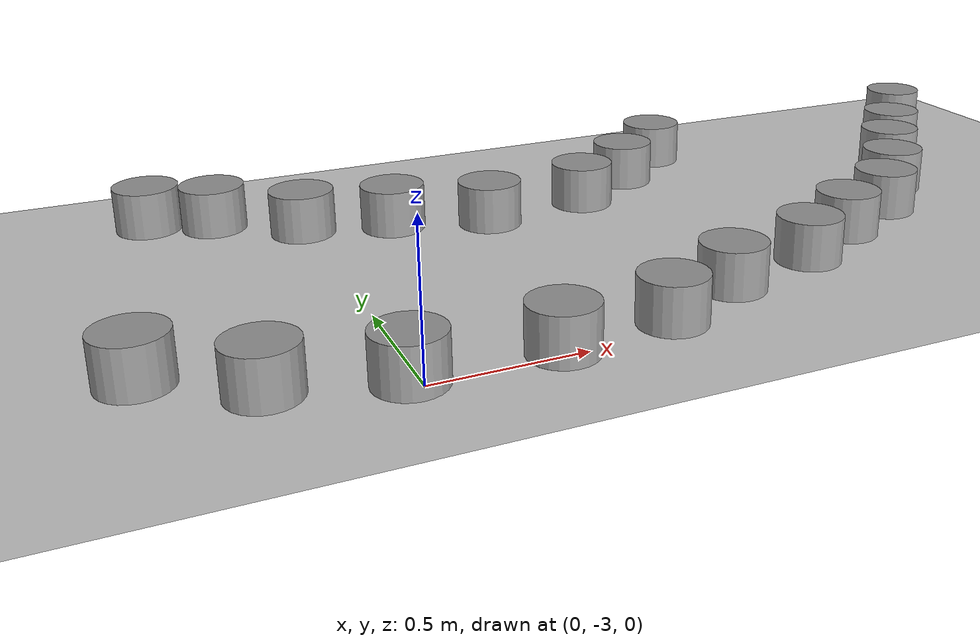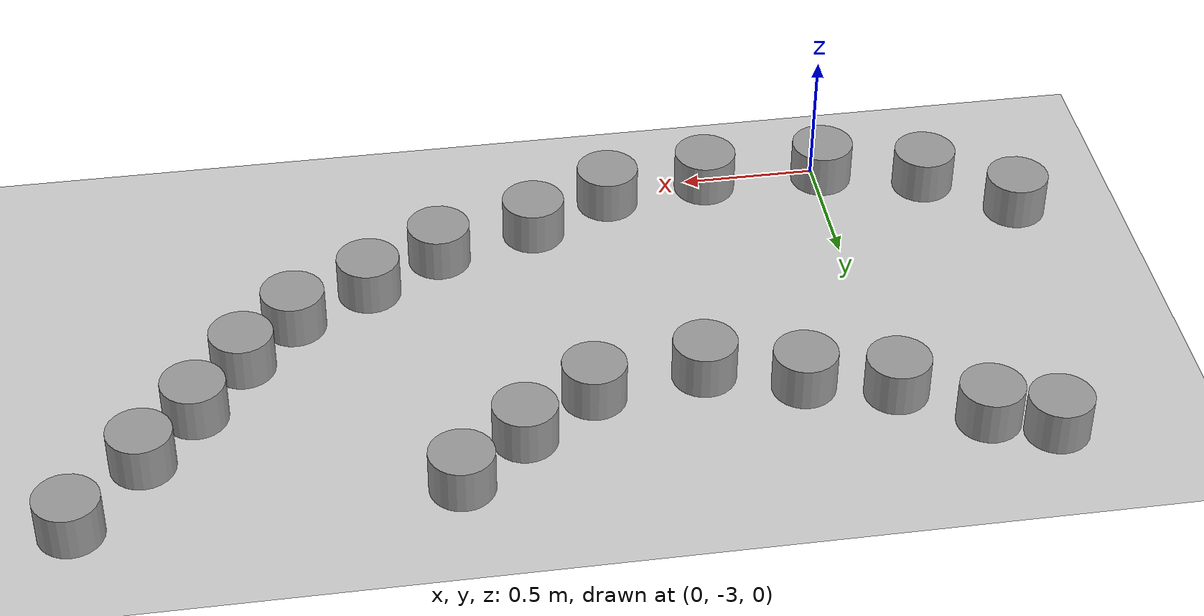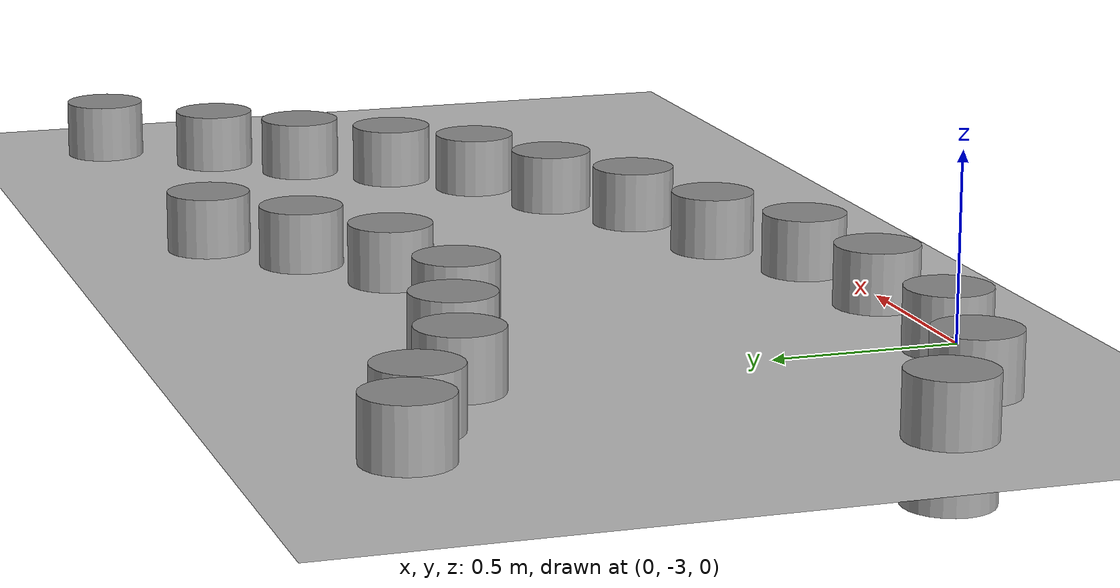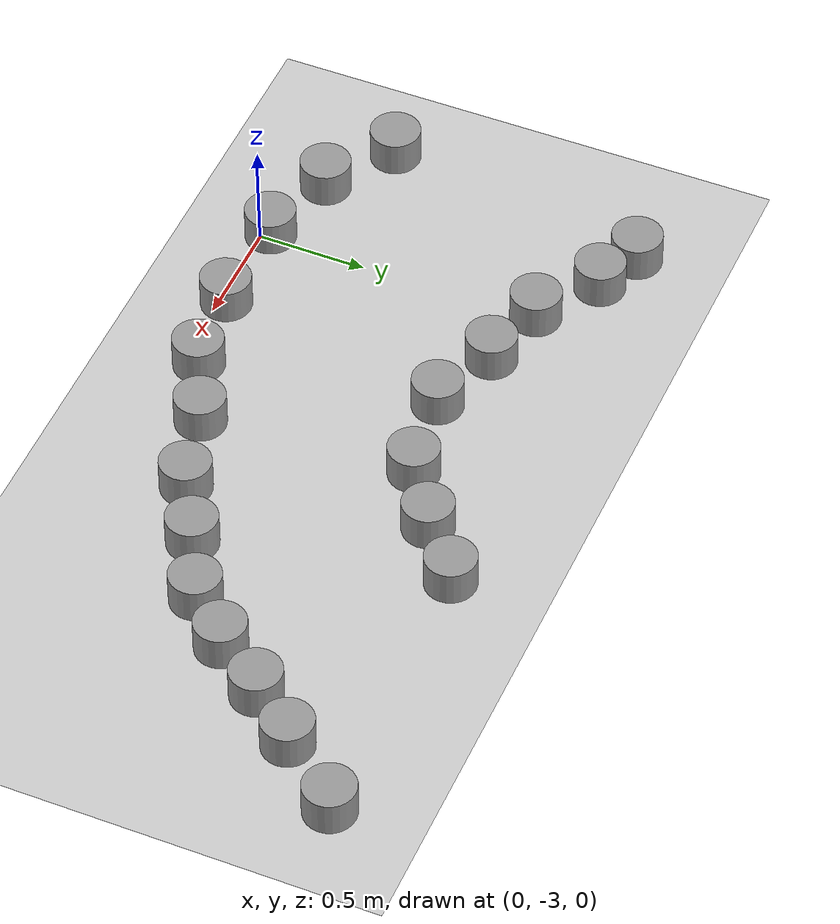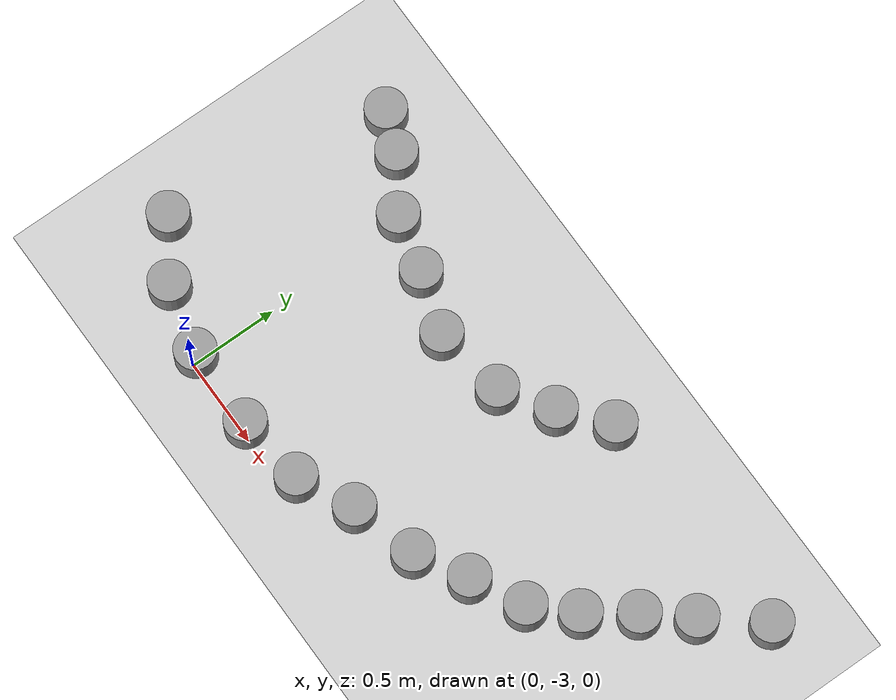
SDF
<sdf version="1.6">
 <world name="default">
  <model name="ground_plane">
   <static>1</static>
   <link name="link">
    <collision name="collision">
     <geometry><plane><normal>0 0 1</normal><size>100 100</size></plane></geometry>
     <surface>
      <contact><collide_bitmask>65535</collide_bitmask></contact>
      <friction><ode><mu>100</mu><mu2>50</mu2></ode></friction>
     </surface>
    </collision>
    <visual name="visual">
     <cast_shadows>0</cast_shadows>
     <geometry><plane><normal>0 0 1</normal><size>100 100</size></plane></geometry>
     <material>
      <script><uri>file://media/materials/scripts/gazebo.material</uri><name>Gazebo/Grey</name></script>
     </material>
    </visual>
   </link>
  </model>
  <model name="pillar_clone_34">
   <link name="link_0">
    <inertial>
     <mass>0.0172437</mass>
     <inertia>
      <ixx>0.000207925</ixx>
      <ixy>0</ixy>
      <ixz>0</ixz>
      <iyy>0.000207925</iyy>
      <iyz>0</iyz>
      <izz>0.000114861</izz>
     </inertia>
    </inertial>
    <pose>2e-06 -0 0 0 -0 0</pose>
    <visual name="visual">
     <geometry><cylinder><radius>0.115422</radius><length>0.32362</length></cylinder></geometry>
     <material>
      <lighting>1</lighting>
      <script><uri>file://media/materials/scripts/gazebo.material</uri><name>Gazebo/Grey</name></script>
      <shader type="vertex"><normal_map>__default__</normal_map></shader>
     </material>
    </visual>
    <collision name="collision">
     <geometry><cylinder><radius>0.115422</radius><length>0.32362</length></cylinder></geometry>
     <surface>
      <friction>
       <ode><mu>1</mu><mu2>1</mu2><fdir1>0 0 0</fdir1><slip1>0</slip1><slip2>0</slip2></ode>
       <torsional>
        <coefficient>1</coefficient>
        <patch_radius>0</patch_radius>
        <surface_radius>0</surface_radius>
        <use_patch_radius>1</use_patch_radius>
        <ode><slip>0</slip></ode>
       </torsional>
      </friction>
      <bounce><restitution_coefficient>0</restitution_coefficient><threshold>1e+06</threshold></bounce>
      <contact>
       <collide_without_contact>0</collide_without_contact>
       <collide_without_contact_bitmask>1</collide_without_contact_bitmask>
       <collide_bitmask>1</collide_bitmask>
       <ode>
        <soft_cfm>0</soft_cfm>
        <soft_erp>0.2</soft_erp>
        <kp>1e+13</kp>
        <kd>1</kd>
        <max_vel>0.01</max_vel>
        <min_depth>0</min_depth>
       </ode>
       <bullet>
        <split_impulse>1</split_impulse>
        <split_impulse_penetration_threshold>-0.01</split_impulse_penetration_threshold>
        <soft_cfm>0</soft_cfm>
        <soft_erp>0.2</soft_erp>
        <kp>1e+13</kp>
        <kd>1</kd>
       </bullet>
      </contact>
     </surface>
    </collision>
   </link>
   <static>1</static>
   <pose>1.12129 -2.77078 0 0 -0 0</pose>
  </model>
  <model name="pillar_clone_35">
   <link name="link_0">
    <inertial>
     <mass>0.0172437</mass>
     <inertia>
      <ixx>0.000207925</ixx>
      <ixy>0</ixy>
      <ixz>0</ixz>
      <iyy>0.000207925</iyy>
      <iyz>0</iyz>
      <izz>0.000114861</izz>
     </inertia>
    </inertial>
    <pose>2e-06 -0 0 0 -0 0</pose>
    <visual name="visual">
     <geometry><cylinder><radius>0.115422</radius><length>0.32362</length></cylinder></geometry>
     <material>
      <lighting>1</lighting>
      <script><uri>file://media/materials/scripts/gazebo.material</uri><name>Gazebo/Grey</name></script>
      <shader type="vertex"><normal_map>__default__</normal_map></shader>
     </material>
    </visual>
    <collision name="collision">
     <geometry><cylinder><radius>0.115422</radius><length>0.32362</length></cylinder></geometry>
     <surface>
      <friction>
       <ode><mu>1</mu><mu2>1</mu2><fdir1>0 0 0</fdir1><slip1>0</slip1><slip2>0</slip2></ode>
       <torsional>
        <coefficient>1</coefficient>
        <patch_radius>0</patch_radius>
        <surface_radius>0</surface_radius>
        <use_patch_radius>1</use_patch_radius>
        <ode><slip>0</slip></ode>
       </torsional>
      </friction>
      <bounce><restitution_coefficient>0</restitution_coefficient><threshold>1e+06</threshold></bounce>
      <contact>
       <collide_without_contact>0</collide_without_contact>
       <collide_without_contact_bitmask>1</collide_without_contact_bitmask>
       <collide_bitmask>1</collide_bitmask>
       <ode>
        <soft_cfm>0</soft_cfm>
        <soft_erp>0.2</soft_erp>
        <kp>1e+13</kp>
        <kd>1</kd>
        <max_vel>0.01</max_vel>
        <min_depth>0</min_depth>
       </ode>
       <bullet>
        <split_impulse>1</split_impulse>
        <split_impulse_penetration_threshold>-0.01</split_impulse_penetration_threshold>
        <soft_cfm>0</soft_cfm>
        <soft_erp>0.2</soft_erp>
        <kp>1e+13</kp>
        <kd>1</kd>
       </bullet>
      </contact>
     </surface>
    </collision>
   </link>
   <static>1</static>
   <pose>1.48879 -2.66743 0 0 -0 0</pose>
  </model>
  <model name="pillar_clone_36">
   <link name="link_0">
    <inertial>
     <mass>0.0172437</mass>
     <inertia>
      <ixx>0.000207925</ixx>
      <ixy>0</ixy>
      <ixz>0</ixz>
      <iyy>0.000207925</iyy>
      <iyz>0</iyz>
      <izz>0.000114861</izz>
     </inertia>
    </inertial>
    <pose>2e-06 -0 0 0 -0 0</pose>
    <visual name="visual">
     <geometry><cylinder><radius>0.115422</radius><length>0.32362</length></cylinder></geometry>
     <material>
      <lighting>1</lighting>
      <script><uri>file://media/materials/scripts/gazebo.material</uri><name>Gazebo/Grey</name></script>
      <shader type="vertex"><normal_map>__default__</normal_map></shader>
     </material>
    </visual>
    <collision name="collision">
     <geometry><cylinder><radius>0.115422</radius><length>0.32362</length></cylinder></geometry>
     <surface>
      <friction>
       <ode><mu>1</mu><mu2>1</mu2><fdir1>0 0 0</fdir1><slip1>0</slip1><slip2>0</slip2></ode>
       <torsional>
        <coefficient>1</coefficient>
        <patch_radius>0</patch_radius>
        <surface_radius>0</surface_radius>
        <use_patch_radius>1</use_patch_radius>
        <ode><slip>0</slip></ode>
       </torsional>
      </friction>
      <bounce><restitution_coefficient>0</restitution_coefficient><threshold>1e+06</threshold></bounce>
      <contact>
       <collide_without_contact>0</collide_without_contact>
       <collide_without_contact_bitmask>1</collide_without_contact_bitmask>
       <collide_bitmask>1</collide_bitmask>
       <ode>
        <soft_cfm>0</soft_cfm>
        <soft_erp>0.2</soft_erp>
        <kp>1e+13</kp>
        <kd>1</kd>
        <max_vel>0.01</max_vel>
        <min_depth>0</min_depth>
       </ode>
       <bullet>
        <split_impulse>1</split_impulse>
        <split_impulse_penetration_threshold>-0.01</split_impulse_penetration_threshold>
        <soft_cfm>0</soft_cfm>
        <soft_erp>0.2</soft_erp>
        <kp>1e+13</kp>
        <kd>1</kd>
       </bullet>
      </contact>
     </surface>
    </collision>
   </link>
   <static>1</static>
   <pose>1.76382 -2.50996 0 0 -0 0</pose>
  </model>
  <model name="pillar_clone_37">
   <link name="link_0">
    <inertial>
     <mass>0.0172437</mass>
     <inertia>
      <ixx>0.000207925</ixx>
      <ixy>0</ixy>
      <ixz>0</ixz>
      <iyy>0.000207925</iyy>
      <iyz>0</iyz>
      <izz>0.000114861</izz>
     </inertia>
    </inertial>
    <pose>2e-06 -0 0 0 -0 0</pose>
    <visual name="visual">
     <geometry><cylinder><radius>0.115422</radius><length>0.32362</length></cylinder></geometry>
     <material>
      <lighting>1</lighting>
      <script><uri>file://media/materials/scripts/gazebo.material</uri><name>Gazebo/Grey</name></script>
      <shader type="vertex"><normal_map>__default__</normal_map></shader>
     </material>
    </visual>
    <collision name="collision">
     <geometry><cylinder><radius>0.115422</radius><length>0.32362</length></cylinder></geometry>
     <surface>
      <friction>
       <ode><mu>1</mu><mu2>1</mu2><fdir1>0 0 0</fdir1><slip1>0</slip1><slip2>0</slip2></ode>
       <torsional>
        <coefficient>1</coefficient>
        <patch_radius>0</patch_radius>
        <surface_radius>0</surface_radius>
        <use_patch_radius>1</use_patch_radius>
        <ode><slip>0</slip></ode>
       </torsional>
      </friction>
      <bounce><restitution_coefficient>0</restitution_coefficient><threshold>1e+06</threshold></bounce>
      <contact>
       <collide_without_contact>0</collide_without_contact>
       <collide_without_contact_bitmask>1</collide_without_contact_bitmask>
       <collide_bitmask>1</collide_bitmask>
       <ode>
        <soft_cfm>0</soft_cfm>
        <soft_erp>0.2</soft_erp>
        <kp>1e+13</kp>
        <kd>1</kd>
        <max_vel>0.01</max_vel>
        <min_depth>0</min_depth>
       </ode>
       <bullet>
        <split_impulse>1</split_impulse>
        <split_impulse_penetration_threshold>-0.01</split_impulse_penetration_threshold>
        <soft_cfm>0</soft_cfm>
        <soft_erp>0.2</soft_erp>
        <kp>1e+13</kp>
        <kd>1</kd>
       </bullet>
      </contact>
     </surface>
    </collision>
   </link>
   <static>1</static>
   <pose>0.815934 -2.92062 0 0 -0 0</pose>
  </model>
  <model name="pillar_clone_38">
   <link name="link_0">
    <inertial>
     <mass>0.0172437</mass>
     <inertia>
      <ixx>0.000207925</ixx>
      <ixy>0</ixy>
      <ixz>0</ixz>
      <iyy>0.000207925</iyy>
      <iyz>0</iyz>
      <izz>0.000114861</izz>
     </inertia>
    </inertial>
    <pose>2e-06 -0 0 0 -0 0</pose>
    <visual name="visual">
     <geometry><cylinder><radius>0.115422</radius><length>0.32362</length></cylinder></geometry>
     <material>
      <lighting>1</lighting>
      <script><uri>file://media/materials/scripts/gazebo.material</uri><name>Gazebo/Grey</name></script>
      <shader type="vertex"><normal_map>__default__</normal_map></shader>
     </material>
    </visual>
    <collision name="collision">
     <geometry><cylinder><radius>0.115422</radius><length>0.32362</length></cylinder></geometry>
     <surface>
      <friction>
       <ode><mu>1</mu><mu2>1</mu2><fdir1>0 0 0</fdir1><slip1>0</slip1><slip2>0</slip2></ode>
       <torsional>
        <coefficient>1</coefficient>
        <patch_radius>0</patch_radius>
        <surface_radius>0</surface_radius>
        <use_patch_radius>1</use_patch_radius>
        <ode><slip>0</slip></ode>
       </torsional>
      </friction>
      <bounce><restitution_coefficient>0</restitution_coefficient><threshold>1e+06</threshold></bounce>
      <contact>
       <collide_without_contact>0</collide_without_contact>
       <collide_without_contact_bitmask>1</collide_without_contact_bitmask>
       <collide_bitmask>1</collide_bitmask>
       <ode>
        <soft_cfm>0</soft_cfm>
        <soft_erp>0.2</soft_erp>
        <kp>1e+13</kp>
        <kd>1</kd>
        <max_vel>0.01</max_vel>
        <min_depth>0</min_depth>
       </ode>
       <bullet>
        <split_impulse>1</split_impulse>
        <split_impulse_penetration_threshold>-0.01</split_impulse_penetration_threshold>
        <soft_cfm>0</soft_cfm>
        <soft_erp>0.2</soft_erp>
        <kp>1e+13</kp>
        <kd>1</kd>
       </bullet>
      </contact>
     </surface>
    </collision>
   </link>
   <static>1</static>
   <pose>0.429906 -2.9671 0 0 -0 0</pose>
  </model>
  <model name="pillar_clone_39">
   <link name="link_0">
    <inertial>
     <mass>0.0172437</mass>
     <inertia>
      <ixx>0.000207925</ixx>
      <ixy>0</ixy>
      <ixz>0</ixz>
      <iyy>0.000207925</iyy>
      <iyz>0</iyz>
      <izz>0.000114861</izz>
     </inertia>
    </inertial>
    <pose>2e-06 -0 0 0 -0 0</pose>
    <visual name="visual">
     <geometry><cylinder><radius>0.115422</radius><length>0.32362</length></cylinder></geometry>
     <material>
      <lighting>1</lighting>
      <script><uri>file://media/materials/scripts/gazebo.material</uri><name>Gazebo/Grey</name></script>
      <shader type="vertex"><normal_map>__default__</normal_map></shader>
     </material>
    </visual>
    <collision name="collision">
     <geometry><cylinder><radius>0.115422</radius><length>0.32362</length></cylinder></geometry>
     <surface>
      <friction>
       <ode><mu>1</mu><mu2>1</mu2><fdir1>0 0 0</fdir1><slip1>0</slip1><slip2>0</slip2></ode>
       <torsional>
        <coefficient>1</coefficient>
        <patch_radius>0</patch_radius>
        <surface_radius>0</surface_radius>
        <use_patch_radius>1</use_patch_radius>
        <ode><slip>0</slip></ode>
       </torsional>
      </friction>
      <bounce><restitution_coefficient>0</restitution_coefficient><threshold>1e+06</threshold></bounce>
      <contact>
       <collide_without_contact>0</collide_without_contact>
       <collide_without_contact_bitmask>1</collide_without_contact_bitmask>
       <collide_bitmask>1</collide_bitmask>
       <ode>
        <soft_cfm>0</soft_cfm>
        <soft_erp>0.2</soft_erp>
        <kp>1e+13</kp>
        <kd>1</kd>
        <max_vel>0.01</max_vel>
        <min_depth>0</min_depth>
       </ode>
       <bullet>
        <split_impulse>1</split_impulse>
        <split_impulse_penetration_threshold>-0.01</split_impulse_penetration_threshold>
        <soft_cfm>0</soft_cfm>
        <soft_erp>0.2</soft_erp>
        <kp>1e+13</kp>
        <kd>1</kd>
       </bullet>
      </contact>
     </surface>
    </collision>
   </link>
   <static>1</static>
   <pose>-0.406799 -2.86076 0 0 -0 0</pose>
  </model>
  <model name="pillar_clone_40">
   <link name="link_0">
    <inertial>
     <mass>0.0172437</mass>
     <inertia>
      <ixx>0.000207925</ixx>
      <ixy>0</ixy>
      <ixz>0</ixz>
      <iyy>0.000207925</iyy>
      <iyz>0</iyz>
      <izz>0.000114861</izz>
     </inertia>
    </inertial>
    <pose>2e-06 -0 0 0 -0 0</pose>
    <visual name="visual">
     <geometry><cylinder><radius>0.115422</radius><length>0.32362</length></cylinder></geometry>
     <material>
      <lighting>1</lighting>
      <script><uri>file://media/materials/scripts/gazebo.material</uri><name>Gazebo/Grey</name></script>
      <shader type="vertex"><normal_map>__default__</normal_map></shader>
     </material>
    </visual>
    <collision name="collision">
     <geometry><cylinder><radius>0.115422</radius><length>0.32362</length></cylinder></geometry>
     <surface>
      <friction>
       <ode><mu>1</mu><mu2>1</mu2><fdir1>0 0 0</fdir1><slip1>0</slip1><slip2>0</slip2></ode>
       <torsional>
        <coefficient>1</coefficient>
        <patch_radius>0</patch_radius>
        <surface_radius>0</surface_radius>
        <use_patch_radius>1</use_patch_radius>
        <ode><slip>0</slip></ode>
       </torsional>
      </friction>
      <bounce><restitution_coefficient>0</restitution_coefficient><threshold>1e+06</threshold></bounce>
      <contact>
       <collide_without_contact>0</collide_without_contact>
       <collide_without_contact_bitmask>1</collide_without_contact_bitmask>
       <collide_bitmask>1</collide_bitmask>
       <ode>
        <soft_cfm>0</soft_cfm>
        <soft_erp>0.2</soft_erp>
        <kp>1e+13</kp>
        <kd>1</kd>
        <max_vel>0.01</max_vel>
        <min_depth>0</min_depth>
       </ode>
       <bullet>
        <split_impulse>1</split_impulse>
        <split_impulse_penetration_threshold>-0.01</split_impulse_penetration_threshold>
        <soft_cfm>0</soft_cfm>
        <soft_erp>0.2</soft_erp>
        <kp>1e+13</kp>
        <kd>1</kd>
       </bullet>
      </contact>
     </surface>
    </collision>
   </link>
   <static>1</static>
   <pose>-0.027955 -2.9603 0 0 -0 0</pose>
  </model>
  <model name="pillar_clone_41">
   <link name="link_0">
    <inertial>
     <mass>0.0172437</mass>
     <inertia>
      <ixx>0.000207925</ixx>
      <ixy>0</ixy>
      <ixz>0</ixz>
      <iyy>0.000207925</iyy>
      <iyz>0</iyz>
      <izz>0.000114861</izz>
     </inertia>
    </inertial>
    <pose>2e-06 -0 0 0 -0 0</pose>
    <visual name="visual">
     <geometry><cylinder><radius>0.115422</radius><length>0.32362</length></cylinder></geometry>
     <material>
      <lighting>1</lighting>
      <script><uri>file://media/materials/scripts/gazebo.material</uri><name>Gazebo/Grey</name></script>
      <shader type="vertex"><normal_map>__default__</normal_map></shader>
     </material>
    </visual>
    <collision name="collision">
     <geometry><cylinder><radius>0.115422</radius><length>0.32362</length></cylinder></geometry>
     <surface>
      <friction>
       <ode><mu>1</mu><mu2>1</mu2><fdir1>0 0 0</fdir1><slip1>0</slip1><slip2>0</slip2></ode>
       <torsional>
        <coefficient>1</coefficient>
        <patch_radius>0</patch_radius>
        <surface_radius>0</surface_radius>
        <use_patch_radius>1</use_patch_radius>
        <ode><slip>0</slip></ode>
       </torsional>
      </friction>
      <bounce><restitution_coefficient>0</restitution_coefficient><threshold>1e+06</threshold></bounce>
      <contact>
       <collide_without_contact>0</collide_without_contact>
       <collide_without_contact_bitmask>1</collide_without_contact_bitmask>
       <collide_bitmask>1</collide_bitmask>
       <ode>
        <soft_cfm>0</soft_cfm>
        <soft_erp>0.2</soft_erp>
        <kp>1e+13</kp>
        <kd>1</kd>
        <max_vel>0.01</max_vel>
        <min_depth>0</min_depth>
       </ode>
       <bullet>
        <split_impulse>1</split_impulse>
        <split_impulse_penetration_threshold>-0.01</split_impulse_penetration_threshold>
        <soft_cfm>0</soft_cfm>
        <soft_erp>0.2</soft_erp>
        <kp>1e+13</kp>
        <kd>1</kd>
       </bullet>
      </contact>
     </surface>
    </collision>
   </link>
   <static>1</static>
   <pose>-0.714507 -2.65318 0 0 -0 0</pose>
  </model>
  <model name="pillar_clone_36_clone">
   <link name="link_0">
    <inertial>
     <mass>0.0172437</mass>
     <inertia>
      <ixx>0.000207925</ixx>
      <ixy>0</ixy>
      <ixz>0</ixz>
      <iyy>0.000207925</iyy>
      <iyz>0</iyz>
      <izz>0.000114861</izz>
     </inertia>
    </inertial>
    <pose>2e-06 -0 0 0 -0 0</pose>
    <visual name="visual">
     <geometry><cylinder><radius>0.115422</radius><length>0.32362</length></cylinder></geometry>
     <material>
      <lighting>1</lighting>
      <script><uri>file://media/materials/scripts/gazebo.material</uri><name>Gazebo/Grey</name></script>
      <shader type="vertex"><normal_map>__default__</normal_map></shader>
     </material>
    </visual>
    <collision name="collision">
     <geometry><cylinder><radius>0.115422</radius><length>0.32362</length></cylinder></geometry>
     <surface>
      <friction>
       <ode><mu>1</mu><mu2>1</mu2><fdir1>0 0 0</fdir1><slip1>0</slip1><slip2>0</slip2></ode>
       <torsional>
        <coefficient>1</coefficient>
        <patch_radius>0</patch_radius>
        <surface_radius>0</surface_radius>
        <use_patch_radius>1</use_patch_radius>
        <ode><slip>0</slip></ode>
       </torsional>
      </friction>
      <bounce><restitution_coefficient>0</restitution_coefficient><threshold>1e+06</threshold></bounce>
      <contact>
       <collide_without_contact>0</collide_without_contact>
       <collide_without_contact_bitmask>1</collide_without_contact_bitmask>
       <collide_bitmask>1</collide_bitmask>
       <ode>
        <soft_cfm>0</soft_cfm>
        <soft_erp>0.2</soft_erp>
        <kp>1e+13</kp>
        <kd>1</kd>
        <max_vel>0.01</max_vel>
        <min_depth>0</min_depth>
       </ode>
       <bullet>
        <split_impulse>1</split_impulse>
        <split_impulse_penetration_threshold>-0.01</split_impulse_penetration_threshold>
        <soft_cfm>0</soft_cfm>
        <soft_erp>0.2</soft_erp>
        <kp>1e+13</kp>
        <kd>1</kd>
       </bullet>
      </contact>
     </surface>
    </collision>
   </link>
   <static>1</static>
   <pose>2.85015 -1.40169 0 0 -0 0</pose>
  </model>
  <model name="pillar_clone_36_clone_0">
   <link name="link_0">
    <inertial>
     <mass>0.0172437</mass>
     <inertia>
      <ixx>0.000207925</ixx>
      <ixy>0</ixy>
      <ixz>0</ixz>
      <iyy>0.000207925</iyy>
      <iyz>0</iyz>
      <izz>0.000114861</izz>
     </inertia>
    </inertial>
    <pose>2e-06 -0 0 0 -0 0</pose>
    <visual name="visual">
     <geometry><cylinder><radius>0.115422</radius><length>0.32362</length></cylinder></geometry>
     <material>
      <lighting>1</lighting>
      <script><uri>file://media/materials/scripts/gazebo.material</uri><name>Gazebo/Grey</name></script>
      <shader type="vertex"><normal_map>__default__</normal_map></shader>
     </material>
    </visual>
    <collision name="collision">
     <geometry><cylinder><radius>0.115422</radius><length>0.32362</length></cylinder></geometry>
     <surface>
      <friction>
       <ode><mu>1</mu><mu2>1</mu2><fdir1>0 0 0</fdir1><slip1>0</slip1><slip2>0</slip2></ode>
       <torsional>
        <coefficient>1</coefficient>
        <patch_radius>0</patch_radius>
        <surface_radius>0</surface_radius>
        <use_patch_radius>1</use_patch_radius>
        <ode><slip>0</slip></ode>
       </torsional>
      </friction>
      <bounce><restitution_coefficient>0</restitution_coefficient><threshold>1e+06</threshold></bounce>
      <contact>
       <collide_without_contact>0</collide_without_contact>
       <collide_without_contact_bitmask>1</collide_without_contact_bitmask>
       <collide_bitmask>1</collide_bitmask>
       <ode>
        <soft_cfm>0</soft_cfm>
        <soft_erp>0.2</soft_erp>
        <kp>1e+13</kp>
        <kd>1</kd>
        <max_vel>0.01</max_vel>
        <min_depth>0</min_depth>
       </ode>
       <bullet>
        <split_impulse>1</split_impulse>
        <split_impulse_penetration_threshold>-0.01</split_impulse_penetration_threshold>
        <soft_cfm>0</soft_cfm>
        <soft_erp>0.2</soft_erp>
        <kp>1e+13</kp>
        <kd>1</kd>
       </bullet>
      </contact>
     </surface>
    </collision>
   </link>
   <static>1</static>
   <pose>2.6073 -1.69408 0 0 -0 0</pose>
  </model>
  <model name="pillar_clone_36_clone_1">
   <link name="link_0">
    <inertial>
     <mass>0.0172437</mass>
     <inertia>
      <ixx>0.000207925</ixx>
      <ixy>0</ixy>
      <ixz>0</ixz>
      <iyy>0.000207925</iyy>
      <iyz>0</iyz>
      <izz>0.000114861</izz>
     </inertia>
    </inertial>
    <pose>2e-06 -0 0 0 -0 0</pose>
    <visual name="visual">
     <geometry><cylinder><radius>0.115422</radius><length>0.32362</length></cylinder></geometry>
     <material>
      <lighting>1</lighting>
      <script><uri>file://media/materials/scripts/gazebo.material</uri><name>Gazebo/Grey</name></script>
      <shader type="vertex"><normal_map>__default__</normal_map></shader>
     </material>
    </visual>
    <collision name="collision">
     <geometry><cylinder><radius>0.115422</radius><length>0.32362</length></cylinder></geometry>
     <surface>
      <friction>
       <ode><mu>1</mu><mu2>1</mu2><fdir1>0 0 0</fdir1><slip1>0</slip1><slip2>0</slip2></ode>
       <torsional>
        <coefficient>1</coefficient>
        <patch_radius>0</patch_radius>
        <surface_radius>0</surface_radius>
        <use_patch_radius>1</use_patch_radius>
        <ode><slip>0</slip></ode>
       </torsional>
      </friction>
      <bounce><restitution_coefficient>0</restitution_coefficient><threshold>1e+06</threshold></bounce>
      <contact>
       <collide_without_contact>0</collide_without_contact>
       <collide_without_contact_bitmask>1</collide_without_contact_bitmask>
       <collide_bitmask>1</collide_bitmask>
       <ode>
        <soft_cfm>0</soft_cfm>
        <soft_erp>0.2</soft_erp>
        <kp>1e+13</kp>
        <kd>1</kd>
        <max_vel>0.01</max_vel>
        <min_depth>0</min_depth>
       </ode>
       <bullet>
        <split_impulse>1</split_impulse>
        <split_impulse_penetration_threshold>-0.01</split_impulse_penetration_threshold>
        <soft_cfm>0</soft_cfm>
        <soft_erp>0.2</soft_erp>
        <kp>1e+13</kp>
        <kd>1</kd>
       </bullet>
      </contact>
     </surface>
    </collision>
   </link>
   <static>1</static>
   <pose>2.41905 -1.9188 0 0 -0 0</pose>
  </model>
  <model name="pillar_clone_36_clone_2">
   <link name="link_0">
    <inertial>
     <mass>0.0172437</mass>
     <inertia>
      <ixx>0.000207925</ixx>
      <ixy>0</ixy>
      <ixz>0</ixz>
      <iyy>0.000207925</iyy>
      <iyz>0</iyz>
      <izz>0.000114861</izz>
     </inertia>
    </inertial>
    <pose>2e-06 -0 0 0 -0 0</pose>
    <visual name="visual">
     <geometry><cylinder><radius>0.115422</radius><length>0.32362</length></cylinder></geometry>
     <material>
      <lighting>1</lighting>
      <script><uri>file://media/materials/scripts/gazebo.material</uri><name>Gazebo/Grey</name></script>
      <shader type="vertex"><normal_map>__default__</normal_map></shader>
     </material>
    </visual>
    <collision name="collision">
     <geometry><cylinder><radius>0.115422</radius><length>0.32362</length></cylinder></geometry>
     <surface>
      <friction>
       <ode><mu>1</mu><mu2>1</mu2><fdir1>0 0 0</fdir1><slip1>0</slip1><slip2>0</slip2></ode>
       <torsional>
        <coefficient>1</coefficient>
        <patch_radius>0</patch_radius>
        <surface_radius>0</surface_radius>
        <use_patch_radius>1</use_patch_radius>
        <ode><slip>0</slip></ode>
       </torsional>
      </friction>
      <bounce><restitution_coefficient>0</restitution_coefficient><threshold>1e+06</threshold></bounce>
      <contact>
       <collide_without_contact>0</collide_without_contact>
       <collide_without_contact_bitmask>1</collide_without_contact_bitmask>
       <collide_bitmask>1</collide_bitmask>
       <ode>
        <soft_cfm>0</soft_cfm>
        <soft_erp>0.2</soft_erp>
        <kp>1e+13</kp>
        <kd>1</kd>
        <max_vel>0.01</max_vel>
        <min_depth>0</min_depth>
       </ode>
       <bullet>
        <split_impulse>1</split_impulse>
        <split_impulse_penetration_threshold>-0.01</split_impulse_penetration_threshold>
        <soft_cfm>0</soft_cfm>
        <soft_erp>0.2</soft_erp>
        <kp>1e+13</kp>
        <kd>1</kd>
       </bullet>
      </contact>
     </surface>
    </collision>
   </link>
   <static>1</static>
   <pose>2.24195 -2.1591 0 0 -0 0</pose>
  </model>
  <model name="pillar_clone_36_clone_3">
   <link name="link_0">
    <inertial>
     <mass>0.0172437</mass>
     <inertia>
      <ixx>0.000207925</ixx>
      <ixy>0</ixy>
      <ixz>0</ixz>
      <iyy>0.000207925</iyy>
      <iyz>0</iyz>
      <izz>0.000114861</izz>
     </inertia>
    </inertial>
    <pose>2e-06 -0 0 0 -0 0</pose>
    <visual name="visual">
     <geometry><cylinder><radius>0.115422</radius><length>0.32362</length></cylinder></geometry>
     <material>
      <lighting>1</lighting>
      <script><uri>file://media/materials/scripts/gazebo.material</uri><name>Gazebo/Grey</name></script>
      <shader type="vertex"><normal_map>__default__</normal_map></shader>
     </material>
    </visual>
    <collision name="collision">
     <geometry><cylinder><radius>0.115422</radius><length>0.32362</length></cylinder></geometry>
     <surface>
      <friction>
       <ode><mu>1</mu><mu2>1</mu2><fdir1>0 0 0</fdir1><slip1>0</slip1><slip2>0</slip2></ode>
       <torsional>
        <coefficient>1</coefficient>
        <patch_radius>0</patch_radius>
        <surface_radius>0</surface_radius>
        <use_patch_radius>1</use_patch_radius>
        <ode><slip>0</slip></ode>
       </torsional>
      </friction>
      <bounce><restitution_coefficient>0</restitution_coefficient><threshold>1e+06</threshold></bounce>
      <contact>
       <collide_without_contact>0</collide_without_contact>
       <collide_without_contact_bitmask>1</collide_without_contact_bitmask>
       <collide_bitmask>1</collide_bitmask>
       <ode>
        <soft_cfm>0</soft_cfm>
        <soft_erp>0.2</soft_erp>
        <kp>1e+13</kp>
        <kd>1</kd>
        <max_vel>0.01</max_vel>
        <min_depth>0</min_depth>
       </ode>
       <bullet>
        <split_impulse>1</split_impulse>
        <split_impulse_penetration_threshold>-0.01</split_impulse_penetration_threshold>
        <soft_cfm>0</soft_cfm>
        <soft_erp>0.2</soft_erp>
        <kp>1e+13</kp>
        <kd>1</kd>
       </bullet>
      </contact>
     </surface>
    </collision>
   </link>
   <static>1</static>
   <pose>2.04795 -2.36254 0 0 -0 0</pose>
  </model>
  <model name="pillar_clone_36_clone_42">
   <link name="link_0">
    <inertial>
     <mass>0.0172437</mass>
     <inertia>
      <ixx>0.000207925</ixx>
      <ixy>0</ixy>
      <ixz>0</ixz>
      <iyy>0.000207925</iyy>
      <iyz>0</iyz>
      <izz>0.000114861</izz>
     </inertia>
    </inertial>
    <pose>2e-06 -0 0 0 -0 0</pose>
    <visual name="visual">
     <geometry><cylinder><radius>0.115422</radius><length>0.32362</length></cylinder></geometry>
     <material>
      <lighting>1</lighting>
      <script><uri>file://media/materials/scripts/gazebo.material</uri><name>Gazebo/Grey</name></script>
      <shader type="vertex"><normal_map>__default__</normal_map></shader>
     </material>
    </visual>
    <collision name="collision">
     <geometry><cylinder><radius>0.115422</radius><length>0.32362</length></cylinder></geometry>
     <surface>
      <friction>
       <ode><mu>1</mu><mu2>1</mu2><fdir1>0 0 0</fdir1><slip1>0</slip1><slip2>0</slip2></ode>
       <torsional>
        <coefficient>1</coefficient>
        <patch_radius>0</patch_radius>
        <surface_radius>0</surface_radius>
        <use_patch_radius>1</use_patch_radius>
        <ode><slip>0</slip></ode>
       </torsional>
      </friction>
      <bounce><restitution_coefficient>0</restitution_coefficient><threshold>1e+06</threshold></bounce>
      <contact>
       <collide_without_contact>0</collide_without_contact>
       <collide_without_contact_bitmask>1</collide_without_contact_bitmask>
       <collide_bitmask>1</collide_bitmask>
       <ode>
        <soft_cfm>0</soft_cfm>
        <soft_erp>0.2</soft_erp>
        <kp>1e+13</kp>
        <kd>1</kd>
        <max_vel>0.01</max_vel>
        <min_depth>0</min_depth>
       </ode>
       <bullet>
        <split_impulse>1</split_impulse>
        <split_impulse_penetration_threshold>-0.01</split_impulse_penetration_threshold>
        <soft_cfm>0</soft_cfm>
        <soft_erp>0.2</soft_erp>
        <kp>1e+13</kp>
        <kd>1</kd>
       </bullet>
      </contact>
     </surface>
    </collision>
   </link>
   <static>1</static>
   <pose>0.633663 -1.87459 0 0 -0 0</pose>
  </model>
  <model name="pillar_clone_36_clone_43">
   <link name="link_0">
    <inertial>
     <mass>0.0172437</mass>
     <inertia>
      <ixx>0.000207925</ixx>
      <ixy>0</ixy>
      <ixz>0</ixz>
      <iyy>0.000207925</iyy>
      <iyz>0</iyz>
      <izz>0.000114861</izz>
     </inertia>
    </inertial>
    <pose>2e-06 -0 0 0 -0 0</pose>
    <visual name="visual">
     <geometry><cylinder><radius>0.115422</radius><length>0.32362</length></cylinder></geometry>
     <material>
      <lighting>1</lighting>
      <script><uri>file://media/materials/scripts/gazebo.material</uri><name>Gazebo/Grey</name></script>
      <shader type="vertex"><normal_map>__default__</normal_map></shader>
     </material>
    </visual>
    <collision name="collision">
     <geometry><cylinder><radius>0.115422</radius><length>0.32362</length></cylinder></geometry>
     <surface>
      <friction>
       <ode><mu>1</mu><mu2>1</mu2><fdir1>0 0 0</fdir1><slip1>0</slip1><slip2>0</slip2></ode>
       <torsional>
        <coefficient>1</coefficient>
        <patch_radius>0</patch_radius>
        <surface_radius>0</surface_radius>
        <use_patch_radius>1</use_patch_radius>
        <ode><slip>0</slip></ode>
       </torsional>
      </friction>
      <bounce><restitution_coefficient>0</restitution_coefficient><threshold>1e+06</threshold></bounce>
      <contact>
       <collide_without_contact>0</collide_without_contact>
       <collide_without_contact_bitmask>1</collide_without_contact_bitmask>
       <collide_bitmask>1</collide_bitmask>
       <ode>
        <soft_cfm>0</soft_cfm>
        <soft_erp>0.2</soft_erp>
        <kp>1e+13</kp>
        <kd>1</kd>
        <max_vel>0.01</max_vel>
        <min_depth>0</min_depth>
       </ode>
       <bullet>
        <split_impulse>1</split_impulse>
        <split_impulse_penetration_threshold>-0.01</split_impulse_penetration_threshold>
        <soft_cfm>0</soft_cfm>
        <soft_erp>0.2</soft_erp>
        <kp>1e+13</kp>
        <kd>1</kd>
       </bullet>
      </contact>
     </surface>
    </collision>
   </link>
   <static>1</static>
   <pose>0.29704 -1.76491 0 0 -0 0</pose>
  </model>
  <model name="pillar_clone_36_clone_45">
   <link name="link_0">
    <inertial>
     <mass>0.0172437</mass>
     <inertia>
      <ixx>0.000207925</ixx>
      <ixy>0</ixy>
      <ixz>0</ixz>
      <iyy>0.000207925</iyy>
      <iyz>0</iyz>
      <izz>0.000114861</izz>
     </inertia>
    </inertial>
    <pose>2e-06 -0 0 0 -0 0</pose>
    <visual name="visual">
     <geometry><cylinder><radius>0.115422</radius><length>0.32362</length></cylinder></geometry>
     <material>
      <lighting>1</lighting>
      <script><uri>file://media/materials/scripts/gazebo.material</uri><name>Gazebo/Grey</name></script>
      <shader type="vertex"><normal_map>__default__</normal_map></shader>
     </material>
    </visual>
    <collision name="collision">
     <geometry><cylinder><radius>0.115422</radius><length>0.32362</length></cylinder></geometry>
     <surface>
      <friction>
       <ode><mu>1</mu><mu2>1</mu2><fdir1>0 0 0</fdir1><slip1>0</slip1><slip2>0</slip2></ode>
       <torsional>
        <coefficient>1</coefficient>
        <patch_radius>0</patch_radius>
        <surface_radius>0</surface_radius>
        <use_patch_radius>1</use_patch_radius>
        <ode><slip>0</slip></ode>
       </torsional>
      </friction>
      <bounce><restitution_coefficient>0</restitution_coefficient><threshold>1e+06</threshold></bounce>
      <contact>
       <collide_without_contact>0</collide_without_contact>
       <collide_without_contact_bitmask>1</collide_without_contact_bitmask>
       <collide_bitmask>1</collide_bitmask>
       <ode>
        <soft_cfm>0</soft_cfm>
        <soft_erp>0.2</soft_erp>
        <kp>1e+13</kp>
        <kd>1</kd>
        <max_vel>0.01</max_vel>
        <min_depth>0</min_depth>
       </ode>
       <bullet>
        <split_impulse>1</split_impulse>
        <split_impulse_penetration_threshold>-0.01</split_impulse_penetration_threshold>
        <soft_cfm>0</soft_cfm>
        <soft_erp>0.2</soft_erp>
        <kp>1e+13</kp>
        <kd>1</kd>
       </bullet>
      </contact>
     </surface>
    </collision>
   </link>
   <static>1</static>
   <pose>-0.518733 -1.40937 0 0 -0 0</pose>
  </model>
  <model name="pillar_clone_36_clone_46">
   <link name="link_0">
    <inertial>
     <mass>0.0172437</mass>
     <inertia>
      <ixx>0.000207925</ixx>
      <ixy>0</ixy>
      <ixz>0</ixz>
      <iyy>0.000207925</iyy>
      <iyz>0</iyz>
      <izz>0.000114861</izz>
     </inertia>
    </inertial>
    <pose>2e-06 -0 0 0 -0 0</pose>
    <visual name="visual">
     <geometry><cylinder><radius>0.115422</radius><length>0.32362</length></cylinder></geometry>
     <material>
      <lighting>1</lighting>
      <script><uri>file://media/materials/scripts/gazebo.material</uri><name>Gazebo/Grey</name></script>
      <shader type="vertex"><normal_map>__default__</normal_map></shader>
     </material>
    </visual>
    <collision name="collision">
     <geometry><cylinder><radius>0.115422</radius><length>0.32362</length></cylinder></geometry>
     <surface>
      <friction>
       <ode><mu>1</mu><mu2>1</mu2><fdir1>0 0 0</fdir1><slip1>0</slip1><slip2>0</slip2></ode>
       <torsional>
        <coefficient>1</coefficient>
        <patch_radius>0</patch_radius>
        <surface_radius>0</surface_radius>
        <use_patch_radius>1</use_patch_radius>
        <ode><slip>0</slip></ode>
       </torsional>
      </friction>
      <bounce><restitution_coefficient>0</restitution_coefficient><threshold>1e+06</threshold></bounce>
      <contact>
       <collide_without_contact>0</collide_without_contact>
       <collide_without_contact_bitmask>1</collide_without_contact_bitmask>
       <collide_bitmask>1</collide_bitmask>
       <ode>
        <soft_cfm>0</soft_cfm>
        <soft_erp>0.2</soft_erp>
        <kp>1e+13</kp>
        <kd>1</kd>
        <max_vel>0.01</max_vel>
        <min_depth>0</min_depth>
       </ode>
       <bullet>
        <split_impulse>1</split_impulse>
        <split_impulse_penetration_threshold>-0.01</split_impulse_penetration_threshold>
        <soft_cfm>0</soft_cfm>
        <soft_erp>0.2</soft_erp>
        <kp>1e+13</kp>
        <kd>1</kd>
       </bullet>
      </contact>
     </surface>
    </collision>
   </link>
   <static>1</static>
   <pose>-0.017242 -1.68606 0 0 -0 0</pose>
  </model>
  <model name="pillar_clone_36_clone_47">
   <link name="link_0">
    <inertial>
     <mass>0.0172437</mass>
     <inertia>
      <ixx>0.000207925</ixx>
      <ixy>0</ixy>
      <ixz>0</ixz>
      <iyy>0.000207925</iyy>
      <iyz>0</iyz>
      <izz>0.000114861</izz>
     </inertia>
    </inertial>
    <pose>2e-06 -0 0 0 -0 0</pose>
    <visual name="visual">
     <geometry><cylinder><radius>0.115422</radius><length>0.32362</length></cylinder></geometry>
     <material>
      <lighting>1</lighting>
      <script><uri>file://media/materials/scripts/gazebo.material</uri><name>Gazebo/Grey</name></script>
      <shader type="vertex"><normal_map>__default__</normal_map></shader>
     </material>
    </visual>
    <collision name="collision">
     <geometry><cylinder><radius>0.115422</radius><length>0.32362</length></cylinder></geometry>
     <surface>
      <friction>
       <ode><mu>1</mu><mu2>1</mu2><fdir1>0 0 0</fdir1><slip1>0</slip1><slip2>0</slip2></ode>
       <torsional>
        <coefficient>1</coefficient>
        <patch_radius>0</patch_radius>
        <surface_radius>0</surface_radius>
        <use_patch_radius>1</use_patch_radius>
        <ode><slip>0</slip></ode>
       </torsional>
      </friction>
      <bounce><restitution_coefficient>0</restitution_coefficient><threshold>1e+06</threshold></bounce>
      <contact>
       <collide_without_contact>0</collide_without_contact>
       <collide_without_contact_bitmask>1</collide_without_contact_bitmask>
       <collide_bitmask>1</collide_bitmask>
       <ode>
        <soft_cfm>0</soft_cfm>
        <soft_erp>0.2</soft_erp>
        <kp>1e+13</kp>
        <kd>1</kd>
        <max_vel>0.01</max_vel>
        <min_depth>0</min_depth>
       </ode>
       <bullet>
        <split_impulse>1</split_impulse>
        <split_impulse_penetration_threshold>-0.01</split_impulse_penetration_threshold>
        <soft_cfm>0</soft_cfm>
        <soft_erp>0.2</soft_erp>
        <kp>1e+13</kp>
        <kd>1</kd>
       </bullet>
      </contact>
     </surface>
    </collision>
   </link>
   <static>1</static>
   <pose>-0.29953 -1.49723 0 0 -0 0</pose>
  </model>
  <model name="pillar_clone_36_clone_48">
   <link name="link_0">
    <inertial>
     <mass>0.0172437</mass>
     <inertia>
      <ixx>0.000207925</ixx>
      <ixy>0</ixy>
      <ixz>0</ixz>
      <iyy>0.000207925</iyy>
      <iyz>0</iyz>
      <izz>0.000114861</izz>
     </inertia>
    </inertial>
    <pose>2e-06 -0 0 0 -0 0</pose>
    <visual name="visual">
     <geometry><cylinder><radius>0.115422</radius><length>0.32362</length></cylinder></geometry>
     <material>
      <lighting>1</lighting>
      <script><uri>file://media/materials/scripts/gazebo.material</uri><name>Gazebo/Grey</name></script>
      <shader type="vertex"><normal_map>__default__</normal_map></shader>
     </material>
    </visual>
    <collision name="collision">
     <geometry><cylinder><radius>0.115422</radius><length>0.32362</length></cylinder></geometry>
     <surface>
      <friction>
       <ode><mu>1</mu><mu2>1</mu2><fdir1>0 0 0</fdir1><slip1>0</slip1><slip2>0</slip2></ode>
       <torsional>
        <coefficient>1</coefficient>
        <patch_radius>0</patch_radius>
        <surface_radius>0</surface_radius>
        <use_patch_radius>1</use_patch_radius>
        <ode><slip>0</slip></ode>
       </torsional>
      </friction>
      <bounce><restitution_coefficient>0</restitution_coefficient><threshold>1e+06</threshold></bounce>
      <contact>
       <collide_without_contact>0</collide_without_contact>
       <collide_without_contact_bitmask>1</collide_without_contact_bitmask>
       <collide_bitmask>1</collide_bitmask>
       <ode>
        <soft_cfm>0</soft_cfm>
        <soft_erp>0.2</soft_erp>
        <kp>1e+13</kp>
        <kd>1</kd>
        <max_vel>0.01</max_vel>
        <min_depth>0</min_depth>
       </ode>
       <bullet>
        <split_impulse>1</split_impulse>
        <split_impulse_penetration_threshold>-0.01</split_impulse_penetration_threshold>
        <soft_cfm>0</soft_cfm>
        <soft_erp>0.2</soft_erp>
        <kp>1e+13</kp>
        <kd>1</kd>
       </bullet>
      </contact>
     </surface>
    </collision>
   </link>
   <static>1</static>
   <pose>1.30327 -1.63453 0 0 -0 0</pose>
  </model>
  <model name="pillar_clone_36_clone_49">
   <link name="link_0">
    <inertial>
     <mass>0.0172437</mass>
     <inertia>
      <ixx>0.000207925</ixx>
      <ixy>0</ixy>
      <ixz>0</ixz>
      <iyy>0.000207925</iyy>
      <iyz>0</iyz>
      <izz>0.000114861</izz>
     </inertia>
    </inertial>
    <pose>2e-06 -0 0 0 -0 0</pose>
    <visual name="visual">
     <geometry><cylinder><radius>0.115422</radius><length>0.32362</length></cylinder></geometry>
     <material>
      <lighting>1</lighting>
      <script><uri>file://media/materials/scripts/gazebo.material</uri><name>Gazebo/Grey</name></script>
      <shader type="vertex"><normal_map>__default__</normal_map></shader>
     </material>
    </visual>
    <collision name="collision">
     <geometry><cylinder><radius>0.115422</radius><length>0.32362</length></cylinder></geometry>
     <surface>
      <friction>
       <ode><mu>1</mu><mu2>1</mu2><fdir1>0 0 0</fdir1><slip1>0</slip1><slip2>0</slip2></ode>
       <torsional>
        <coefficient>1</coefficient>
        <patch_radius>0</patch_radius>
        <surface_radius>0</surface_radius>
        <use_patch_radius>1</use_patch_radius>
        <ode><slip>0</slip></ode>
       </torsional>
      </friction>
      <bounce><restitution_coefficient>0</restitution_coefficient><threshold>1e+06</threshold></bounce>
      <contact>
       <collide_without_contact>0</collide_without_contact>
       <collide_without_contact_bitmask>1</collide_without_contact_bitmask>
       <collide_bitmask>1</collide_bitmask>
       <ode>
        <soft_cfm>0</soft_cfm>
        <soft_erp>0.2</soft_erp>
        <kp>1e+13</kp>
        <kd>1</kd>
        <max_vel>0.01</max_vel>
        <min_depth>0</min_depth>
       </ode>
       <bullet>
        <split_impulse>1</split_impulse>
        <split_impulse_penetration_threshold>-0.01</split_impulse_penetration_threshold>
        <soft_cfm>0</soft_cfm>
        <soft_erp>0.2</soft_erp>
        <kp>1e+13</kp>
        <kd>1</kd>
       </bullet>
      </contact>
     </surface>
    </collision>
   </link>
   <static>1</static>
   <pose>1.03662 -1.81357 0 0 -0 0</pose>
  </model>
  <model name="pillar_clone_36_clone_50">
   <link name="link_0">
    <inertial>
     <mass>0.0172437</mass>
     <inertia>
      <ixx>0.000207925</ixx>
      <ixy>0</ixy>
      <ixz>0</ixz>
      <iyy>0.000207925</iyy>
      <iyz>0</iyz>
      <izz>0.000114861</izz>
     </inertia>
    </inertial>
    <pose>2e-06 -0 0 0 -0 0</pose>
    <visual name="visual">
     <geometry><cylinder><radius>0.115422</radius><length>0.32362</length></cylinder></geometry>
     <material>
      <lighting>1</lighting>
      <script><uri>file://media/materials/scripts/gazebo.material</uri><name>Gazebo/Grey</name></script>
      <shader type="vertex"><normal_map>__default__</normal_map></shader>
     </material>
    </visual>
    <collision name="collision">
     <geometry><cylinder><radius>0.115422</radius><length>0.32362</length></cylinder></geometry>
     <surface>
      <friction>
       <ode><mu>1</mu><mu2>1</mu2><fdir1>0 0 0</fdir1><slip1>0</slip1><slip2>0</slip2></ode>
       <torsional>
        <coefficient>1</coefficient>
        <patch_radius>0</patch_radius>
        <surface_radius>0</surface_radius>
        <use_patch_radius>1</use_patch_radius>
        <ode><slip>0</slip></ode>
       </torsional>
      </friction>
      <bounce><restitution_coefficient>0</restitution_coefficient><threshold>1e+06</threshold></bounce>
      <contact>
       <collide_without_contact>0</collide_without_contact>
       <collide_without_contact_bitmask>1</collide_without_contact_bitmask>
       <collide_bitmask>1</collide_bitmask>
       <ode>
        <soft_cfm>0</soft_cfm>
        <soft_erp>0.2</soft_erp>
        <kp>1e+13</kp>
        <kd>1</kd>
        <max_vel>0.01</max_vel>
        <min_depth>0</min_depth>
       </ode>
       <bullet>
        <split_impulse>1</split_impulse>
        <split_impulse_penetration_threshold>-0.01</split_impulse_penetration_threshold>
        <soft_cfm>0</soft_cfm>
        <soft_erp>0.2</soft_erp>
        <kp>1e+13</kp>
        <kd>1</kd>
       </bullet>
      </contact>
     </surface>
    </collision>
   </link>
   <static>1</static>
   <pose>1.54408 -1.43051 0 0 -0 0</pose>
  </model>
 </world>
</sdf>
